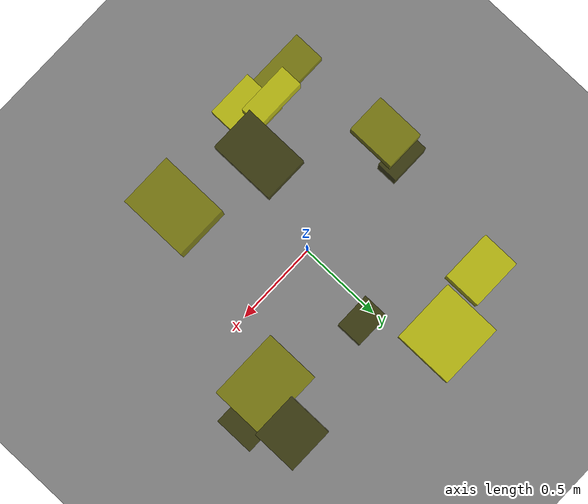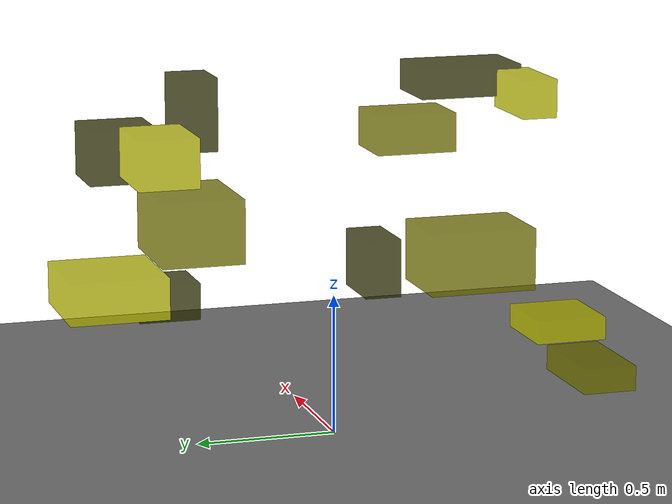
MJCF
<?xml version="1.0"?>
<mujoco model="obstacle_scene">
  <compiler angle="radian" coordinate="local"/>
  <option timestep="0.001" gravity="0 0 -9.81"/>

  <asset>
    <material name="obstacle_mat" rgba="0.8 0.8 0.0 0.8"/>
    <material name="ground_mat" rgba="0.5 0.5 0.5 1"/>
  </asset>

  <worldbody>
    <!-- Ground plane -->
    <geom name="ground" type="plane" size="3 3 0.1" material="ground_mat"/>

    <!-- Obstacles -->
    <body name="obstacle_0" pos="0.116970 0.478907 1.162356">
      <geom name="obs_0" type="box" size="0.094484 0.070473 0.128307" rgba="0.2 0.2 0.0 0.8"/>
    </body>
    <body name="obstacle_1" pos="0.334406 -0.629048 0.536351">
      <geom name="obs_1" type="box" size="0.155561 0.199185 0.114937" rgba="0.5 0.5 0.0 0.8"/>
    </body>
    <body name="obstacle_2" pos="-0.456210 0.729949 1.118635">
      <geom name="obs_2" type="box" size="0.137187 0.101693 0.082798" rgba="0.8 0.8 0.0 0.8"/>
    </body>
    <body name="obstacle_3" pos="-0.118368 -0.421946 1.277892">
      <geom name="obs_3" type="box" size="0.121460 0.178570 0.053513" rgba="0.2 0.2 0.0 0.8"/>
    </body>
    <body name="obstacle_4" pos="-0.617986 -0.061387 1.199293">
      <geom name="obs_4" type="box" size="0.105076 0.132030 0.063858" rgba="0.5 0.5 0.0 0.8"/>
    </body>
    <body name="obstacle_5" pos="-0.359745 -0.571238 1.251951">
      <geom name="obs_5" type="box" size="0.140430 0.059747 0.065253" rgba="0.8 0.8 0.0 0.8"/>
    </body>
    <body name="obstacle_6" pos="-0.636169 0.058979 0.765497">
      <geom name="obs_6" type="box" size="0.111109 0.058806 0.095357" rgba="0.2 0.2 0.0 0.8"/>
    </body>
    <body name="obstacle_7" pos="-0.611582 -0.726703 0.339763">
      <geom name="obs_7" type="box" size="0.172618 0.092050 0.042564" rgba="0.5 0.5 0.0 0.8"/>
    </body>
    <body name="obstacle_8" pos="-0.304048 -0.724861 0.426512">
      <geom name="obs_8" type="box" size="0.136756 0.124876 0.040228" rgba="0.8 0.8 0.0 0.8"/>
    </body>
    <body name="obstacle_9" pos="0.746134 0.607701 0.915374">
      <geom name="obs_9" type="box" size="0.128154 0.126380 0.100837" rgba="0.2 0.2 0.0 0.8"/>
    </body>
    <body name="obstacle_10" pos="0.670842 0.347787 0.643131">
      <geom name="obs_10" type="box" size="0.199486 0.155651 0.120987" rgba="0.5 0.5 0.0 0.8"/>
    </body>
    <body name="obstacle_11" pos="-0.155152 0.841464 0.615845">
      <geom name="obs_11" type="box" size="0.183009 0.169424 0.072007" rgba="0.8 0.8 0.0 0.8"/>
    </body>
    <body name="obstacle_12" pos="0.876432 0.407049 0.321272">
      <geom name="obs_12" type="box" size="0.114150 0.116598 0.069786" rgba="0.2 0.2 0.0 0.8"/>
    </body>
  </worldbody>
</mujoco>
